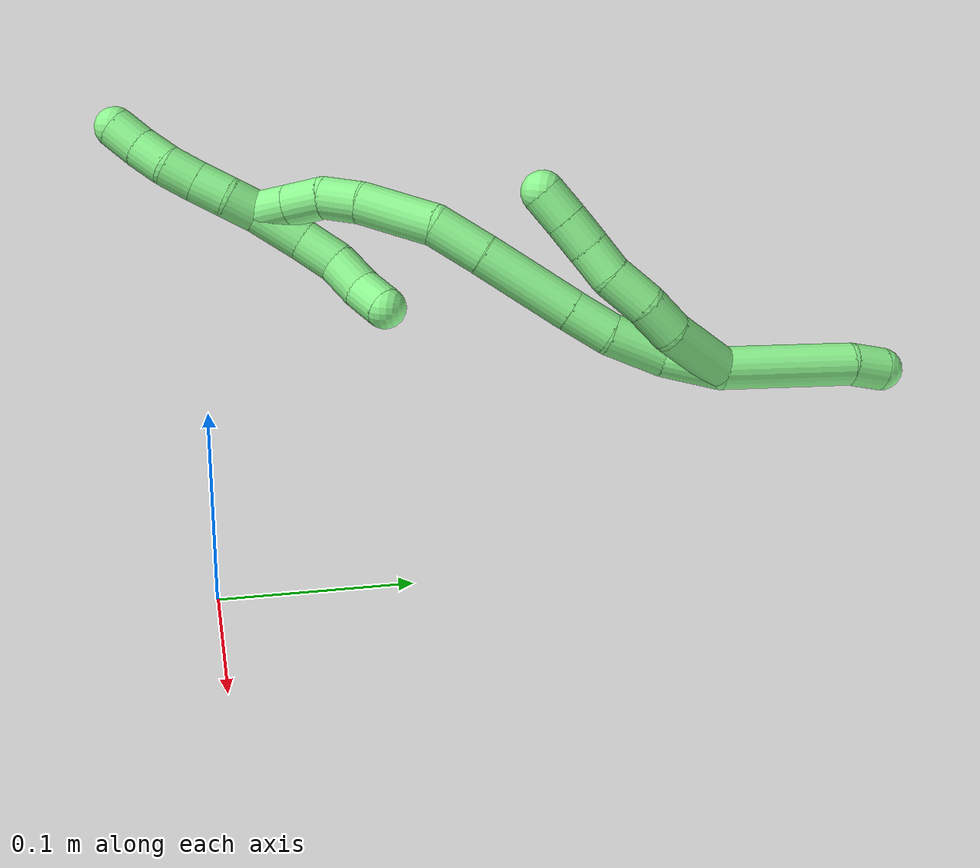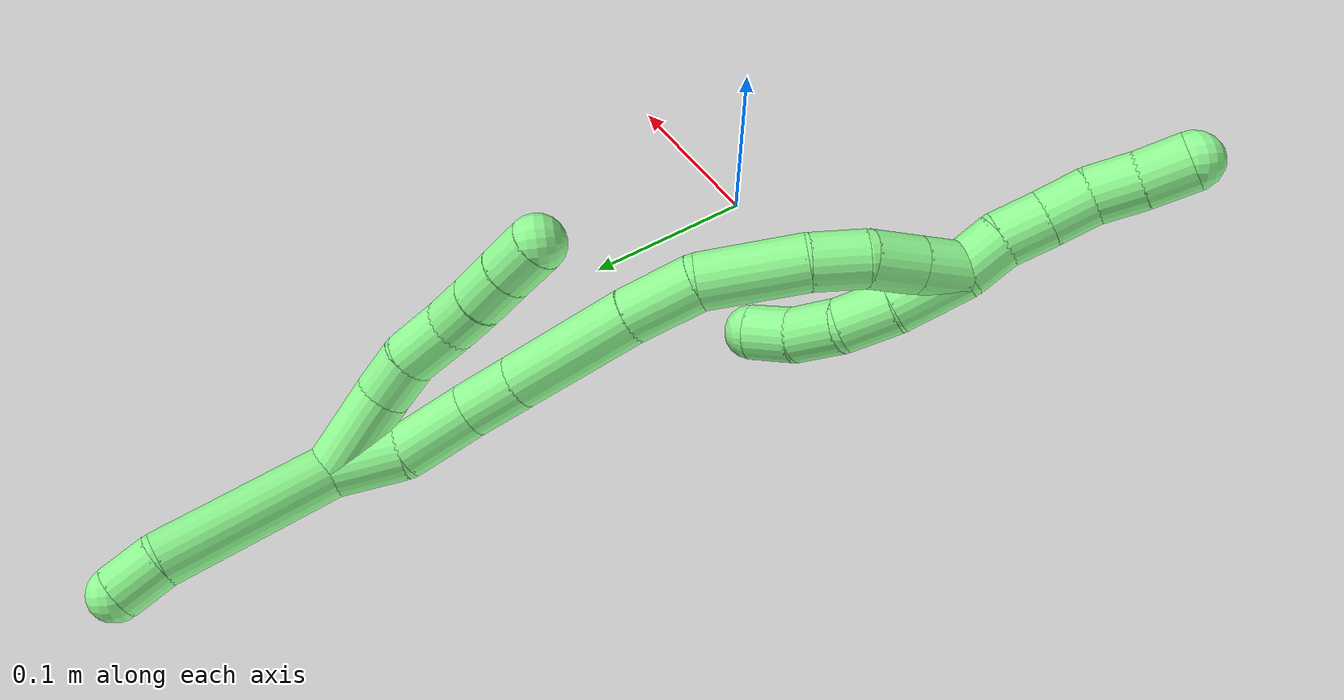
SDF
<sdf version="1.7">
 <world name="default">
  <model name="13">
   <static>0</static>
   <link name="13">
    <collision name="collision-cylinder-e_1_2_8">
     <pose>0.009177 -0.012698 -0.013753 2.39606 0.45585 1.07076</pose>
     <geometry><cylinder><radius>0.0125</radius><length>0.041694</length></cylinder></geometry>
     <surface>
      <friction><ode><mu>1.16</mu><mu2>1.16</mu2><slip1>0</slip1><slip2>0</slip2></ode></friction>
      <contact><ode><kp>1e+06</kp><kd>1</kd><max_vel>0</max_vel><min_depth>0.001</min_depth></ode></contact>
     </surface>
    </collision>
    <visual name="visual-cylinder-e_1_2_8">
     <pose>0.009177 -0.012698 -0.013753 2.39606 0.45585 1.07076</pose>
     <geometry><cylinder><radius>0.0125</radius><length>0.041694</length></cylinder></geometry>
     <material><ambient>0.564706 0.984314 0.572549 1</ambient></material>
    </visual>
    <collision name="collision-cylinder-e_2_8_9">
     <pose>0.020713 -0.03346 -0.034778 2.30452 0.213838 0.473521</pose>
     <geometry><cylinder><radius>0.0125</radius><length>0.022224</length></cylinder></geometry>
     <surface>
      <friction><ode><mu>1.16</mu><mu2>1.16</mu2><slip1>0</slip1><slip2>0</slip2></ode></friction>
      <contact><ode><kp>1e+06</kp><kd>1</kd><max_vel>0</max_vel><min_depth>0.001</min_depth></ode></contact>
     </surface>
    </collision>
    <visual name="visual-cylinder-e_2_8_9">
     <pose>0.020713 -0.03346 -0.034778 2.30452 0.213838 0.473521</pose>
     <geometry><cylinder><radius>0.0125</radius><length>0.022224</length></cylinder></geometry>
     <material><ambient>0.564706 0.984314 0.572549 1</ambient></material>
    </visual>
    <collision name="collision-cylinder-e_3_9_10">
     <pose>0.023986 -0.049506 -0.052271 2.47872 0.070443 0.204072</pose>
     <geometry><cylinder><radius>0.0125</radius><length>0.026002</length></cylinder></geometry>
     <surface>
      <friction><ode><mu>1.16</mu><mu2>1.16</mu2><slip1>0</slip1><slip2>0</slip2></ode></friction>
      <contact><ode><kp>1e+06</kp><kd>1</kd><max_vel>0</max_vel><min_depth>0.001</min_depth></ode></contact>
     </surface>
    </collision>
    <visual name="visual-cylinder-e_3_9_10">
     <pose>0.023986 -0.049506 -0.052271 2.47872 0.070443 0.204072</pose>
     <geometry><cylinder><radius>0.0125</radius><length>0.026002</length></cylinder></geometry>
     <material><ambient>0.564706 0.984314 0.572549 1</ambient></material>
    </visual>
    <collision name="collision-cylinder-e_4_10_11">
     <pose>0.024071 -0.064846 -0.069238 2.31264 -0.082948 -0.188086</pose>
     <geometry><cylinder><radius>0.0125</radius><length>0.020034</length></cylinder></geometry>
     <surface>
      <friction><ode><mu>1.16</mu><mu2>1.16</mu2><slip1>0</slip1><slip2>0</slip2></ode></friction>
      <contact><ode><kp>1e+06</kp><kd>1</kd><max_vel>0</max_vel><min_depth>0.001</min_depth></ode></contact>
     </surface>
    </collision>
    <visual name="visual-cylinder-e_4_10_11">
     <pose>0.024071 -0.064846 -0.069238 2.31264 -0.082948 -0.188086</pose>
     <geometry><cylinder><radius>0.0125</radius><length>0.020034</length></cylinder></geometry>
     <material><ambient>0.564706 0.984314 0.572549 1</ambient></material>
    </visual>
    <collision name="collision-cylinder-e_5_11_12">
     <pose>0.022951 -0.079623 -0.082711 2.30747 -0.028994 -0.065422</pose>
     <geometry><cylinder><radius>0.0125</radius><length>0.020038</length></cylinder></geometry>
     <surface>
      <friction><ode><mu>1.16</mu><mu2>1.16</mu2><slip1>0</slip1><slip2>0</slip2></ode></friction>
      <contact><ode><kp>1e+06</kp><kd>1</kd><max_vel>0</max_vel><min_depth>0.001</min_depth></ode></contact>
     </surface>
    </collision>
    <visual name="visual-cylinder-e_5_11_12">
     <pose>0.022951 -0.079623 -0.082711 2.30747 -0.028994 -0.065422</pose>
     <geometry><cylinder><radius>0.0125</radius><length>0.020038</length></cylinder></geometry>
     <material><ambient>0.564706 0.984314 0.572549 1</ambient></material>
    </visual>
    <collision name="collision-cylinder-e_6_12_6">
     <pose>0.022388 -0.094309 -0.096308 2.32794 -0.027286 -0.063311</pose>
     <geometry><cylinder><radius>0.0125</radius><length>0.020008</length></cylinder></geometry>
     <surface>
      <friction><ode><mu>1.16</mu><mu2>1.16</mu2><slip1>0</slip1><slip2>0</slip2></ode></friction>
      <contact><ode><kp>1e+06</kp><kd>1</kd><max_vel>0</max_vel><min_depth>0.001</min_depth></ode></contact>
     </surface>
    </collision>
    <visual name="visual-cylinder-e_6_12_6">
     <pose>0.022388 -0.094309 -0.096308 2.32794 -0.027286 -0.063311</pose>
     <geometry><cylinder><radius>0.0125</radius><length>0.020008</length></cylinder></geometry>
     <material><ambient>0.564706 0.984314 0.572549 1</ambient></material>
    </visual>
    <collision name="collision-cylinder-e_1_2_13">
     <pose>-0.016435 0.000772 0.035828 -0.021543 -0.429997 0.004705</pose>
     <geometry><cylinder><radius>0.0125</radius><length>0.078851</length></cylinder></geometry>
     <surface>
      <friction><ode><mu>1.16</mu><mu2>1.16</mu2><slip1>0</slip1><slip2>0</slip2></ode></friction>
      <contact><ode><kp>1e+06</kp><kd>1</kd><max_vel>0</max_vel><min_depth>0.001</min_depth></ode></contact>
     </surface>
    </collision>
    <visual name="visual-cylinder-e_1_2_13">
     <pose>-0.016435 0.000772 0.035828 -0.021543 -0.429997 0.004705</pose>
     <geometry><cylinder><radius>0.0125</radius><length>0.078851</length></cylinder></geometry>
     <material><ambient>0.564706 0.984314 0.572549 1</ambient></material>
    </visual>
    <collision name="collision-cylinder-e_2_13_5">
     <pose>-0.037837 0.003898 0.08069 -0.25488 -0.488933 0.063906</pose>
     <geometry><cylinder><radius>0.0125</radius><length>0.021149</length></cylinder></geometry>
     <surface>
      <friction><ode><mu>1.16</mu><mu2>1.16</mu2><slip1>0</slip1><slip2>0</slip2></ode></friction>
      <contact><ode><kp>1e+06</kp><kd>1</kd><max_vel>0</max_vel><min_depth>0.001</min_depth></ode></contact>
     </surface>
    </collision>
    <visual name="visual-cylinder-e_2_13_5">
     <pose>-0.037837 0.003898 0.08069 -0.25488 -0.488933 0.063906</pose>
     <geometry><cylinder><radius>0.0125</radius><length>0.021149</length></cylinder></geometry>
     <material><ambient>0.564706 0.984314 0.572549 1</ambient></material>
    </visual>
    <collision name="collision-cylinder-e_1_2_14">
     <pose>0.000502 -0.00232 -0.016458 3.00156 0.030206 0.424255</pose>
     <geometry><cylinder><radius>0.0125</radius><length>0.033257</length></cylinder></geometry>
     <surface>
      <friction><ode><mu>1.16</mu><mu2>1.16</mu2><slip1>0</slip1><slip2>0</slip2></ode></friction>
      <contact><ode><kp>1e+06</kp><kd>1</kd><max_vel>0</max_vel><min_depth>0.001</min_depth></ode></contact>
     </surface>
    </collision>
    <visual name="visual-cylinder-e_1_2_14">
     <pose>0.000502 -0.00232 -0.016458 3.00156 0.030206 0.424255</pose>
     <geometry><cylinder><radius>0.0125</radius><length>0.033257</length></cylinder></geometry>
     <material><ambient>0.564706 0.984314 0.572549 1</ambient></material>
    </visual>
    <collision name="collision-cylinder-e_2_14_15">
     <pose>0.005023 -0.011006 -0.04841 2.75174 0.23547 1.07951</pose>
     <geometry><cylinder><radius>0.0125</radius><length>0.034452</length></cylinder></geometry>
     <surface>
      <friction><ode><mu>1.16</mu><mu2>1.16</mu2><slip1>0</slip1><slip2>0</slip2></ode></friction>
      <contact><ode><kp>1e+06</kp><kd>1</kd><max_vel>0</max_vel><min_depth>0.001</min_depth></ode></contact>
     </surface>
    </collision>
    <visual name="visual-cylinder-e_2_14_15">
     <pose>0.005023 -0.011006 -0.04841 2.75174 0.23547 1.07951</pose>
     <geometry><cylinder><radius>0.0125</radius><length>0.034452</length></cylinder></geometry>
     <material><ambient>0.564706 0.984314 0.572549 1</ambient></material>
    </visual>
    <collision name="collision-cylinder-e_3_15_16">
     <pose>0.010032 -0.023777 -0.075445 2.63497 0.074879 0.287393</pose>
     <geometry><cylinder><radius>0.0125</radius><length>0.026473</length></cylinder></geometry>
     <surface>
      <friction><ode><mu>1.16</mu><mu2>1.16</mu2><slip1>0</slip1><slip2>0</slip2></ode></friction>
      <contact><ode><kp>1e+06</kp><kd>1</kd><max_vel>0</max_vel><min_depth>0.001</min_depth></ode></contact>
     </surface>
    </collision>
    <visual name="visual-cylinder-e_3_15_16">
     <pose>0.010032 -0.023777 -0.075445 2.63497 0.074879 0.287393</pose>
     <geometry><cylinder><radius>0.0125</radius><length>0.026473</length></cylinder></geometry>
     <material><ambient>0.564706 0.984314 0.572549 1</ambient></material>
    </visual>
    <collision name="collision-cylinder-e_4_16_17">
     <pose>0.012703 -0.04497 -0.112493 2.61618 0.056934 0.210983</pose>
     <geometry><cylinder><radius>0.0125</radius><length>0.059063</length></cylinder></geometry>
     <surface>
      <friction><ode><mu>1.16</mu><mu2>1.16</mu2><slip1>0</slip1><slip2>0</slip2></ode></friction>
      <contact><ode><kp>1e+06</kp><kd>1</kd><max_vel>0</max_vel><min_depth>0.001</min_depth></ode></contact>
     </surface>
    </collision>
    <visual name="visual-cylinder-e_4_16_17">
     <pose>0.012703 -0.04497 -0.112493 2.61618 0.056934 0.210983</pose>
     <geometry><cylinder><radius>0.0125</radius><length>0.059063</length></cylinder></geometry>
     <material><ambient>0.564706 0.984314 0.572549 1</ambient></material>
    </visual>
    <collision name="collision-cylinder-e_5_17_18">
     <pose>0.014437 -0.067376 -0.152516 2.65833 0.003296 0.013373</pose>
     <geometry><cylinder><radius>0.0125</radius><length>0.032789</length></cylinder></geometry>
     <surface>
      <friction><ode><mu>1.16</mu><mu2>1.16</mu2><slip1>0</slip1><slip2>0</slip2></ode></friction>
      <contact><ode><kp>1e+06</kp><kd>1</kd><max_vel>0</max_vel><min_depth>0.001</min_depth></ode></contact>
     </surface>
    </collision>
    <visual name="visual-cylinder-e_5_17_18">
     <pose>0.014437 -0.067376 -0.152516 2.65833 0.003296 0.013373</pose>
     <geometry><cylinder><radius>0.0125</radius><length>0.032789</length></cylinder></geometry>
     <material><ambient>0.564706 0.984314 0.572549 1</ambient></material>
    </visual>
    <collision name="collision-cylinder-e_6_18_19">
     <pose>0.012142 -0.079082 -0.189807 2.96396 -0.101211 -1.03429</pose>
     <geometry><cylinder><radius>0.0125</radius><length>0.046513</length></cylinder></geometry>
     <surface>
      <friction><ode><mu>1.16</mu><mu2>1.16</mu2><slip1>0</slip1><slip2>0</slip2></ode></friction>
      <contact><ode><kp>1e+06</kp><kd>1</kd><max_vel>0</max_vel><min_depth>0.001</min_depth></ode></contact>
     </surface>
    </collision>
    <visual name="visual-cylinder-e_6_18_19">
     <pose>0.012142 -0.079082 -0.189807 2.96396 -0.101211 -1.03429</pose>
     <geometry><cylinder><radius>0.0125</radius><length>0.046513</length></cylinder></geometry>
     <material><ambient>0.564706 0.984314 0.572549 1</ambient></material>
    </visual>
    <collision name="collision-cylinder-e_7_19_20">
     <pose>0.00846 -0.083432 -0.224396 3.11945 -0.112182 -2.75229</pose>
     <geometry><cylinder><radius>0.0125</radius><length>0.023786</length></cylinder></geometry>
     <surface>
      <friction><ode><mu>1.16</mu><mu2>1.16</mu2><slip1>0</slip1><slip2>0</slip2></ode></friction>
      <contact><ode><kp>1e+06</kp><kd>1</kd><max_vel>0</max_vel><min_depth>0.001</min_depth></ode></contact>
     </surface>
    </collision>
    <visual name="visual-cylinder-e_7_19_20">
     <pose>0.00846 -0.083432 -0.224396 3.11945 -0.112182 -2.75229</pose>
     <geometry><cylinder><radius>0.0125</radius><length>0.023786</length></cylinder></geometry>
     <material><ambient>0.564706 0.984314 0.572549 1</ambient></material>
    </visual>
    <collision name="collision-cylinder-e_8_20_21">
     <pose>0.006616 -0.080305 -0.247016 -2.83773 -0.045271 0.293599</pose>
     <geometry><cylinder><radius>0.0125</radius><length>0.022671</length></cylinder></geometry>
     <surface>
      <friction><ode><mu>1.16</mu><mu2>1.16</mu2><slip1>0</slip1><slip2>0</slip2></ode></friction>
      <contact><ode><kp>1e+06</kp><kd>1</kd><max_vel>0</max_vel><min_depth>0.001</min_depth></ode></contact>
     </surface>
    </collision>
    <visual name="visual-cylinder-e_8_20_21">
     <pose>0.006616 -0.080305 -0.247016 -2.83773 -0.045271 0.293599</pose>
     <geometry><cylinder><radius>0.0125</radius><length>0.022671</length></cylinder></geometry>
     <material><ambient>0.564706 0.984314 0.572549 1</ambient></material>
    </visual>
    <collision name="collision-cylinder-e_9_21_1">
     <pose>0.005632 -0.073823 -0.267842 -2.8421 -0.04492 0.295609</pose>
     <geometry><cylinder><radius>0.0125</radius><length>0.020997</length></cylinder></geometry>
     <surface>
      <friction><ode><mu>1.16</mu><mu2>1.16</mu2><slip1>0</slip1><slip2>0</slip2></ode></friction>
      <contact><ode><kp>1e+06</kp><kd>1</kd><max_vel>0</max_vel><min_depth>0.001</min_depth></ode></contact>
     </surface>
    </collision>
    <visual name="visual-cylinder-e_9_21_1">
     <pose>0.005632 -0.073823 -0.267842 -2.8421 -0.04492 0.295609</pose>
     <geometry><cylinder><radius>0.0125</radius><length>0.020997</length></cylinder></geometry>
     <material><ambient>0.564706 0.984314 0.572549 1</ambient></material>
    </visual>
    <collision name="collision-cylinder-e_1_1_22">
     <pose>0.007953 -0.075478 -0.286209 2.62422 0.283041 0.987806</pose>
     <geometry><cylinder><radius>0.0125</radius><length>0.02</length></cylinder></geometry>
     <surface>
      <friction><ode><mu>1.16</mu><mu2>1.16</mu2><slip1>0</slip1><slip2>0</slip2></ode></friction>
      <contact><ode><kp>1e+06</kp><kd>1</kd><max_vel>0</max_vel><min_depth>0.001</min_depth></ode></contact>
     </surface>
    </collision>
    <visual name="visual-cylinder-e_1_1_22">
     <pose>0.007953 -0.075478 -0.286209 2.62422 0.283041 0.987806</pose>
     <geometry><cylinder><radius>0.0125</radius><length>0.02</length></cylinder></geometry>
     <material><ambient>0.564706 0.984314 0.572549 1</ambient></material>
    </visual>
    <collision name="collision-cylinder-e_2_22_23">
     <pose>0.011356 -0.08419 -0.303715 2.73327 0.061059 0.292882</pose>
     <geometry><cylinder><radius>0.0125</radius><length>0.02</length></cylinder></geometry>
     <surface>
      <friction><ode><mu>1.16</mu><mu2>1.16</mu2><slip1>0</slip1><slip2>0</slip2></ode></friction>
      <contact><ode><kp>1e+06</kp><kd>1</kd><max_vel>0</max_vel><min_depth>0.001</min_depth></ode></contact>
     </surface>
    </collision>
    <visual name="visual-cylinder-e_2_22_23">
     <pose>0.011356 -0.08419 -0.303715 2.73327 0.061059 0.292882</pose>
     <geometry><cylinder><radius>0.0125</radius><length>0.02</length></cylinder></geometry>
     <material><ambient>0.564706 0.984314 0.572549 1</ambient></material>
    </visual>
    <collision name="collision-cylinder-e_3_23_24">
     <pose>0.01263 -0.092528 -0.321844 2.6878 0.066429 0.285874</pose>
     <geometry><cylinder><radius>0.0125</radius><length>0.02</length></cylinder></geometry>
     <surface>
      <friction><ode><mu>1.16</mu><mu2>1.16</mu2><slip1>0</slip1><slip2>0</slip2></ode></friction>
      <contact><ode><kp>1e+06</kp><kd>1</kd><max_vel>0</max_vel><min_depth>0.001</min_depth></ode></contact>
     </surface>
    </collision>
    <visual name="visual-cylinder-e_3_23_24">
     <pose>0.01263 -0.092528 -0.321844 2.6878 0.066429 0.285874</pose>
     <geometry><cylinder><radius>0.0125</radius><length>0.02</length></cylinder></geometry>
     <material><ambient>0.564706 0.984314 0.572549 1</ambient></material>
    </visual>
    <collision name="collision-cylinder-e_4_24_25">
     <pose>0.011548 -0.101274 -0.339634 2.68146 -0.175431 -0.718376</pose>
     <geometry><cylinder><radius>0.0125</radius><length>0.02</length></cylinder></geometry>
     <surface>
      <friction><ode><mu>1.16</mu><mu2>1.16</mu2><slip1>0</slip1><slip2>0</slip2></ode></friction>
      <contact><ode><kp>1e+06</kp><kd>1</kd><max_vel>0</max_vel><min_depth>0.001</min_depth></ode></contact>
     </surface>
    </collision>
    <visual name="visual-cylinder-e_4_24_25">
     <pose>0.011548 -0.101274 -0.339634 2.68146 -0.175431 -0.718376</pose>
     <geometry><cylinder><radius>0.0125</radius><length>0.02</length></cylinder></geometry>
     <material><ambient>0.564706 0.984314 0.572549 1</ambient></material>
    </visual>
    <collision name="collision-cylinder-e_5_25_4">
     <pose>0.008253 -0.110771 -0.356903 2.5963 -0.155614 -0.543857</pose>
     <geometry><cylinder><radius>0.0125</radius><length>0.02</length></cylinder></geometry>
     <surface>
      <friction><ode><mu>1.16</mu><mu2>1.16</mu2><slip1>0</slip1><slip2>0</slip2></ode></friction>
      <contact><ode><kp>1e+06</kp><kd>1</kd><max_vel>0</max_vel><min_depth>0.001</min_depth></ode></contact>
     </surface>
    </collision>
    <visual name="visual-cylinder-e_5_25_4">
     <pose>0.008253 -0.110771 -0.356903 2.5963 -0.155614 -0.543857</pose>
     <geometry><cylinder><radius>0.0125</radius><length>0.02</length></cylinder></geometry>
     <material><ambient>0.564706 0.984314 0.572549 1</ambient></material>
    </visual>
    <collision name="collision-cylinder-e_1_1_26">
     <pose>0.004515 -0.06311 -0.264033 -0.503515 -0.040848 0.010508</pose>
     <geometry><cylinder><radius>0.0125</radius><length>0.031605</length></cylinder></geometry>
     <surface>
      <friction><ode><mu>1.16</mu><mu2>1.16</mu2><slip1>0</slip1><slip2>0</slip2></ode></friction>
      <contact><ode><kp>1e+06</kp><kd>1</kd><max_vel>0</max_vel><min_depth>0.001</min_depth></ode></contact>
     </surface>
    </collision>
    <visual name="visual-cylinder-e_1_1_26">
     <pose>0.004515 -0.06311 -0.264033 -0.503515 -0.040848 0.010508</pose>
     <geometry><cylinder><radius>0.0125</radius><length>0.031605</length></cylinder></geometry>
     <material><ambient>0.564706 0.984314 0.572549 1</ambient></material>
    </visual>
    <collision name="collision-cylinder-e_2_26_27">
     <pose>0.005024 -0.049926 -0.239468 -0.478271 0.095163 -0.023217</pose>
     <geometry><cylinder><radius>0.0125</radius><length>0.024295</length></cylinder></geometry>
     <surface>
      <friction><ode><mu>1.16</mu><mu2>1.16</mu2><slip1>0</slip1><slip2>0</slip2></ode></friction>
      <contact><ode><kp>1e+06</kp><kd>1</kd><max_vel>0</max_vel><min_depth>0.001</min_depth></ode></contact>
     </surface>
    </collision>
    <visual name="visual-cylinder-e_2_26_27">
     <pose>0.005024 -0.049926 -0.239468 -0.478271 0.095163 -0.023217</pose>
     <geometry><cylinder><radius>0.0125</radius><length>0.024295</length></cylinder></geometry>
     <material><ambient>0.564706 0.984314 0.572549 1</ambient></material>
    </visual>
    <collision name="collision-cylinder-e_3_27_28">
     <pose>0.010317 -0.038226 -0.219748 -0.599099 0.363512 -0.113399</pose>
     <geometry><cylinder><radius>0.0125</radius><length>0.02328</length></cylinder></geometry>
     <surface>
      <friction><ode><mu>1.16</mu><mu2>1.16</mu2><slip1>0</slip1><slip2>0</slip2></ode></friction>
      <contact><ode><kp>1e+06</kp><kd>1</kd><max_vel>0</max_vel><min_depth>0.001</min_depth></ode></contact>
     </surface>
    </collision>
    <visual name="visual-cylinder-e_3_27_28">
     <pose>0.010317 -0.038226 -0.219748 -0.599099 0.363512 -0.113399</pose>
     <geometry><cylinder><radius>0.0125</radius><length>0.02328</length></cylinder></geometry>
     <material><ambient>0.564706 0.984314 0.572549 1</ambient></material>
    </visual>
    <collision name="collision-cylinder-e_4_28_3">
     <pose>0.019655 -0.02897 -0.202301 -0.353305 0.522935 -0.095465</pose>
     <geometry><cylinder><radius>0.0125</radius><length>0.02082</length></cylinder></geometry>
     <surface>
      <friction><ode><mu>1.16</mu><mu2>1.16</mu2><slip1>0</slip1><slip2>0</slip2></ode></friction>
      <contact><ode><kp>1e+06</kp><kd>1</kd><max_vel>0</max_vel><min_depth>0.001</min_depth></ode></contact>
     </surface>
    </collision>
    <visual name="visual-cylinder-e_4_28_3">
     <pose>0.019655 -0.02897 -0.202301 -0.353305 0.522935 -0.095465</pose>
     <geometry><cylinder><radius>0.0125</radius><length>0.02082</length></cylinder></geometry>
     <material><ambient>0.564706 0.984314 0.572549 1</ambient></material>
    </visual>
    <collision name="collision-sphere-3">
     <pose>0.024853 -0.02585 -0.19384 0 -0 0</pose>
     <geometry><sphere><radius>0.0125</radius></sphere></geometry>
     <surface>
      <friction><ode><mu>1.16</mu><mu2>1.16</mu2><slip1>0</slip1><slip2>0</slip2></ode></friction>
      <contact><ode><kp>1e+06</kp><kd>1</kd><max_vel>0</max_vel><min_depth>0.001</min_depth></ode></contact>
     </surface>
    </collision>
    <visual name="visual-sphere-3">
     <pose>0.024853 -0.02585 -0.19384 0 -0 0</pose>
     <geometry><sphere><radius>0.0125</radius></sphere></geometry>
     <material><ambient>0.564706 0.984314 0.572549 1</ambient></material>
    </visual>
    <collision name="collision-sphere-28">
     <pose>0.014456 -0.032091 -0.210763 0 -0 0</pose>
     <geometry><sphere><radius>0.0125</radius></sphere></geometry>
     <surface>
      <friction><ode><mu>1.16</mu><mu2>1.16</mu2><slip1>0</slip1><slip2>0</slip2></ode></friction>
      <contact><ode><kp>1e+06</kp><kd>1</kd><max_vel>0</max_vel><min_depth>0.001</min_depth></ode></contact>
     </surface>
    </collision>
    <visual name="visual-sphere-28">
     <pose>0.014456 -0.032091 -0.210763 0 -0 0</pose>
     <geometry><sphere><radius>0.0125</radius></sphere></geometry>
     <material><ambient>0.564706 0.984314 0.572549 1</ambient></material>
    </visual>
    <collision name="collision-sphere-27">
     <pose>0.006178 -0.044361 -0.228733 0 -0 0</pose>
     <geometry><sphere><radius>0.0125</radius></sphere></geometry>
     <surface>
      <friction><ode><mu>1.16</mu><mu2>1.16</mu2><slip1>0</slip1><slip2>0</slip2></ode></friction>
      <contact><ode><kp>1e+06</kp><kd>1</kd><max_vel>0</max_vel><min_depth>0.001</min_depth></ode></contact>
     </surface>
    </collision>
    <visual name="visual-sphere-27">
     <pose>0.006178 -0.044361 -0.228733 0 -0 0</pose>
     <geometry><sphere><radius>0.0125</radius></sphere></geometry>
     <material><ambient>0.564706 0.984314 0.572549 1</ambient></material>
    </visual>
    <collision name="collision-sphere-26">
     <pose>0.00387 -0.055492 -0.250204 0 -0 0</pose>
     <geometry><sphere><radius>0.0125</radius></sphere></geometry>
     <surface>
      <friction><ode><mu>1.16</mu><mu2>1.16</mu2><slip1>0</slip1><slip2>0</slip2></ode></friction>
      <contact><ode><kp>1e+06</kp><kd>1</kd><max_vel>0</max_vel><min_depth>0.001</min_depth></ode></contact>
     </surface>
    </collision>
    <visual name="visual-sphere-26">
     <pose>0.00387 -0.055492 -0.250204 0 -0 0</pose>
     <geometry><sphere><radius>0.0125</radius></sphere></geometry>
     <material><ambient>0.564706 0.984314 0.572549 1</ambient></material>
    </visual>
    <collision name="collision-sphere-4">
     <pose>0.006703 -0.115895 -0.365349 0 -0 0</pose>
     <geometry><sphere><radius>0.0125</radius></sphere></geometry>
     <surface>
      <friction><ode><mu>1.16</mu><mu2>1.16</mu2><slip1>0</slip1><slip2>0</slip2></ode></friction>
      <contact><ode><kp>1e+06</kp><kd>1</kd><max_vel>0</max_vel><min_depth>0.001</min_depth></ode></contact>
     </surface>
    </collision>
    <visual name="visual-sphere-4">
     <pose>0.006703 -0.115895 -0.365349 0 -0 0</pose>
     <geometry><sphere><radius>0.0125</radius></sphere></geometry>
     <material><ambient>0.564706 0.984314 0.572549 1</ambient></material>
    </visual>
    <collision name="collision-sphere-25">
     <pose>0.009803 -0.105647 -0.348457 0 -0 0</pose>
     <geometry><sphere><radius>0.0125</radius></sphere></geometry>
     <surface>
      <friction><ode><mu>1.16</mu><mu2>1.16</mu2><slip1>0</slip1><slip2>0</slip2></ode></friction>
      <contact><ode><kp>1e+06</kp><kd>1</kd><max_vel>0</max_vel><min_depth>0.001</min_depth></ode></contact>
     </surface>
    </collision>
    <visual name="visual-sphere-25">
     <pose>0.009803 -0.105647 -0.348457 0 -0 0</pose>
     <geometry><sphere><radius>0.0125</radius></sphere></geometry>
     <material><ambient>0.564706 0.984314 0.572549 1</ambient></material>
    </visual>
    <collision name="collision-sphere-24">
     <pose>0.013294 -0.096902 -0.330812 0 -0 0</pose>
     <geometry><sphere><radius>0.0125</radius></sphere></geometry>
     <surface>
      <friction><ode><mu>1.16</mu><mu2>1.16</mu2><slip1>0</slip1><slip2>0</slip2></ode></friction>
      <contact><ode><kp>1e+06</kp><kd>1</kd><max_vel>0</max_vel><min_depth>0.001</min_depth></ode></contact>
     </surface>
    </collision>
    <visual name="visual-sphere-24">
     <pose>0.013294 -0.096902 -0.330812 0 -0 0</pose>
     <geometry><sphere><radius>0.0125</radius></sphere></geometry>
     <material><ambient>0.564706 0.984314 0.572549 1</ambient></material>
    </visual>
    <collision name="collision-sphere-23">
     <pose>0.011966 -0.088154 -0.312876 0 -0 0</pose>
     <geometry><sphere><radius>0.0125</radius></sphere></geometry>
     <surface>
      <friction><ode><mu>1.16</mu><mu2>1.16</mu2><slip1>0</slip1><slip2>0</slip2></ode></friction>
      <contact><ode><kp>1e+06</kp><kd>1</kd><max_vel>0</max_vel><min_depth>0.001</min_depth></ode></contact>
     </surface>
    </collision>
    <visual name="visual-sphere-23">
     <pose>0.011966 -0.088154 -0.312876 0 -0 0</pose>
     <geometry><sphere><radius>0.0125</radius></sphere></geometry>
     <material><ambient>0.564706 0.984314 0.572549 1</ambient></material>
    </visual>
    <collision name="collision-sphere-22">
     <pose>0.010746 -0.080227 -0.294554 0 -0 0</pose>
     <geometry><sphere><radius>0.0125</radius></sphere></geometry>
     <surface>
      <friction><ode><mu>1.16</mu><mu2>1.16</mu2><slip1>0</slip1><slip2>0</slip2></ode></friction>
      <contact><ode><kp>1e+06</kp><kd>1</kd><max_vel>0</max_vel><min_depth>0.001</min_depth></ode></contact>
     </surface>
    </collision>
    <visual name="visual-sphere-22">
     <pose>0.010746 -0.080227 -0.294554 0 -0 0</pose>
     <geometry><sphere><radius>0.0125</radius></sphere></geometry>
     <material><ambient>0.564706 0.984314 0.572549 1</ambient></material>
    </visual>
    <collision name="collision-sphere-1">
     <pose>0.00516 -0.070729 -0.277863 0 -0 0</pose>
     <geometry><sphere><radius>0.0125</radius></sphere></geometry>
     <surface>
      <friction><ode><mu>1.16</mu><mu2>1.16</mu2><slip1>0</slip1><slip2>0</slip2></ode></friction>
      <contact><ode><kp>1e+06</kp><kd>1</kd><max_vel>0</max_vel><min_depth>0.001</min_depth></ode></contact>
     </surface>
    </collision>
    <visual name="visual-sphere-1">
     <pose>0.00516 -0.070729 -0.277863 0 -0 0</pose>
     <geometry><sphere><radius>0.0125</radius></sphere></geometry>
     <material><ambient>0.564706 0.984314 0.572549 1</ambient></material>
    </visual>
    <collision name="collision-sphere-21">
     <pose>0.006103 -0.076917 -0.257821 0 -0 0</pose>
     <geometry><sphere><radius>0.0125</radius></sphere></geometry>
     <surface>
      <friction><ode><mu>1.16</mu><mu2>1.16</mu2><slip1>0</slip1><slip2>0</slip2></ode></friction>
      <contact><ode><kp>1e+06</kp><kd>1</kd><max_vel>0</max_vel><min_depth>0.001</min_depth></ode></contact>
     </surface>
    </collision>
    <visual name="visual-sphere-21">
     <pose>0.006103 -0.076917 -0.257821 0 -0 0</pose>
     <geometry><sphere><radius>0.0125</radius></sphere></geometry>
     <material><ambient>0.564706 0.984314 0.572549 1</ambient></material>
    </visual>
    <collision name="collision-sphere-12">
     <pose>0.022661 -0.087041 -0.08944 0 -0 0</pose>
     <geometry><sphere><radius>0.0125</radius></sphere></geometry>
     <surface>
      <friction><ode><mu>1.16</mu><mu2>1.16</mu2><slip1>0</slip1><slip2>0</slip2></ode></friction>
      <contact><ode><kp>1e+06</kp><kd>1</kd><max_vel>0</max_vel><min_depth>0.001</min_depth></ode></contact>
     </surface>
    </collision>
    <visual name="visual-sphere-12">
     <pose>0.022661 -0.087041 -0.08944 0 -0 0</pose>
     <geometry><sphere><radius>0.0125</radius></sphere></geometry>
     <material><ambient>0.564706 0.984314 0.572549 1</ambient></material>
    </visual>
    <collision name="collision-sphere-11">
     <pose>0.023241 -0.072205 -0.075983 0 -0 0</pose>
     <geometry><sphere><radius>0.0125</radius></sphere></geometry>
     <surface>
      <friction><ode><mu>1.16</mu><mu2>1.16</mu2><slip1>0</slip1><slip2>0</slip2></ode></friction>
      <contact><ode><kp>1e+06</kp><kd>1</kd><max_vel>0</max_vel><min_depth>0.001</min_depth></ode></contact>
     </surface>
    </collision>
    <visual name="visual-sphere-11">
     <pose>0.023241 -0.072205 -0.075983 0 -0 0</pose>
     <geometry><sphere><radius>0.0125</radius></sphere></geometry>
     <material><ambient>0.564706 0.984314 0.572549 1</ambient></material>
    </visual>
    <collision name="collision-sphere-10">
     <pose>0.024901 -0.057487 -0.062494 0 -0 0</pose>
     <geometry><sphere><radius>0.0125</radius></sphere></geometry>
     <surface>
      <friction><ode><mu>1.16</mu><mu2>1.16</mu2><slip1>0</slip1><slip2>0</slip2></ode></friction>
      <contact><ode><kp>1e+06</kp><kd>1</kd><max_vel>0</max_vel><min_depth>0.001</min_depth></ode></contact>
     </surface>
    </collision>
    <visual name="visual-sphere-10">
     <pose>0.024901 -0.057487 -0.062494 0 -0 0</pose>
     <geometry><sphere><radius>0.0125</radius></sphere></geometry>
     <material><ambient>0.564706 0.984314 0.572549 1</ambient></material>
    </visual>
    <collision name="collision-sphere-9">
     <pose>0.023071 -0.041525 -0.042049 0 -0 0</pose>
     <geometry><sphere><radius>0.0125</radius></sphere></geometry>
     <surface>
      <friction><ode><mu>1.16</mu><mu2>1.16</mu2><slip1>0</slip1><slip2>0</slip2></ode></friction>
      <contact><ode><kp>1e+06</kp><kd>1</kd><max_vel>0</max_vel><min_depth>0.001</min_depth></ode></contact>
     </surface>
    </collision>
    <visual name="visual-sphere-9">
     <pose>0.023071 -0.041525 -0.042049 0 -0 0</pose>
     <geometry><sphere><radius>0.0125</radius></sphere></geometry>
     <material><ambient>0.564706 0.984314 0.572549 1</ambient></material>
    </visual>
    <collision name="collision-sphere-2">
     <geometry><sphere><radius>0.0125</radius></sphere></geometry>
     <surface>
      <friction><ode><mu>1.16</mu><mu2>1.16</mu2><slip1>0</slip1><slip2>0</slip2></ode></friction>
      <contact><ode><kp>1e+06</kp><kd>1</kd><max_vel>0</max_vel><min_depth>0.001</min_depth></ode></contact>
     </surface>
    </collision>
    <visual name="visual-sphere-2">
     <geometry><sphere><radius>0.0125</radius></sphere></geometry>
     <material><ambient>0.564706 0.984314 0.572549 1</ambient></material>
    </visual>
    <collision name="collision-sphere-19">
     <pose>0.009792 -0.08317 -0.212581 0 -0 0</pose>
     <geometry><sphere><radius>0.0125</radius></sphere></geometry>
     <surface>
      <friction><ode><mu>1.16</mu><mu2>1.16</mu2><slip1>0</slip1><slip2>0</slip2></ode></friction>
      <contact><ode><kp>1e+06</kp><kd>1</kd><max_vel>0</max_vel><min_depth>0.001</min_depth></ode></contact>
     </surface>
    </collision>
    <visual name="visual-sphere-19">
     <pose>0.009792 -0.08317 -0.212581 0 -0 0</pose>
     <geometry><sphere><radius>0.0125</radius></sphere></geometry>
     <material><ambient>0.564706 0.984314 0.572549 1</ambient></material>
    </visual>
    <collision name="collision-sphere-8">
     <pose>0.018355 -0.025396 -0.027506 0 -0 0</pose>
     <geometry><sphere><radius>0.0125</radius></sphere></geometry>
     <surface>
      <friction><ode><mu>1.16</mu><mu2>1.16</mu2><slip1>0</slip1><slip2>0</slip2></ode></friction>
      <contact><ode><kp>1e+06</kp><kd>1</kd><max_vel>0</max_vel><min_depth>0.001</min_depth></ode></contact>
     </surface>
    </collision>
    <visual name="visual-sphere-8">
     <pose>0.018355 -0.025396 -0.027506 0 -0 0</pose>
     <geometry><sphere><radius>0.0125</radius></sphere></geometry>
     <material><ambient>0.564706 0.984314 0.572549 1</ambient></material>
    </visual>
    <collision name="collision-sphere-6">
     <pose>0.022115 -0.101578 -0.103177 0 -0 0</pose>
     <geometry><sphere><radius>0.0125</radius></sphere></geometry>
     <surface>
      <friction><ode><mu>1.16</mu><mu2>1.16</mu2><slip1>0</slip1><slip2>0</slip2></ode></friction>
      <contact><ode><kp>1e+06</kp><kd>1</kd><max_vel>0</max_vel><min_depth>0.001</min_depth></ode></contact>
     </surface>
    </collision>
    <visual name="visual-sphere-6">
     <pose>0.022115 -0.101578 -0.103177 0 -0 0</pose>
     <geometry><sphere><radius>0.0125</radius></sphere></geometry>
     <material><ambient>0.564706 0.984314 0.572549 1</ambient></material>
    </visual>
    <collision name="collision-sphere-13">
     <pose>-0.03287 0.001544 0.071656 0 -0 0</pose>
     <geometry><sphere><radius>0.0125</radius></sphere></geometry>
     <surface>
      <friction><ode><mu>1.16</mu><mu2>1.16</mu2><slip1>0</slip1><slip2>0</slip2></ode></friction>
      <contact><ode><kp>1e+06</kp><kd>1</kd><max_vel>0</max_vel><min_depth>0.001</min_depth></ode></contact>
     </surface>
    </collision>
    <visual name="visual-sphere-13">
     <pose>-0.03287 0.001544 0.071656 0 -0 0</pose>
     <geometry><sphere><radius>0.0125</radius></sphere></geometry>
     <material><ambient>0.564706 0.984314 0.572549 1</ambient></material>
    </visual>
    <collision name="collision-sphere-5">
     <pose>-0.042804 0.006252 0.089724 0 -0 0</pose>
     <geometry><sphere><radius>0.0125</radius></sphere></geometry>
     <surface>
      <friction><ode><mu>1.16</mu><mu2>1.16</mu2><slip1>0</slip1><slip2>0</slip2></ode></friction>
      <contact><ode><kp>1e+06</kp><kd>1</kd><max_vel>0</max_vel><min_depth>0.001</min_depth></ode></contact>
     </surface>
    </collision>
    <visual name="visual-sphere-5">
     <pose>-0.042804 0.006252 0.089724 0 -0 0</pose>
     <geometry><sphere><radius>0.0125</radius></sphere></geometry>
     <material><ambient>0.564706 0.984314 0.572549 1</ambient></material>
    </visual>
    <collision name="collision-sphere-14">
     <pose>0.001004 -0.00464 -0.032916 0 -0 0</pose>
     <geometry><sphere><radius>0.0125</radius></sphere></geometry>
     <surface>
      <friction><ode><mu>1.16</mu><mu2>1.16</mu2><slip1>0</slip1><slip2>0</slip2></ode></friction>
      <contact><ode><kp>1e+06</kp><kd>1</kd><max_vel>0</max_vel><min_depth>0.001</min_depth></ode></contact>
     </surface>
    </collision>
    <visual name="visual-sphere-14">
     <pose>0.001004 -0.00464 -0.032916 0 -0 0</pose>
     <geometry><sphere><radius>0.0125</radius></sphere></geometry>
     <material><ambient>0.564706 0.984314 0.572549 1</ambient></material>
    </visual>
    <collision name="collision-sphere-15">
     <pose>0.009042 -0.017372 -0.063904 0 -0 0</pose>
     <geometry><sphere><radius>0.0125</radius></sphere></geometry>
     <surface>
      <friction><ode><mu>1.16</mu><mu2>1.16</mu2><slip1>0</slip1><slip2>0</slip2></ode></friction>
      <contact><ode><kp>1e+06</kp><kd>1</kd><max_vel>0</max_vel><min_depth>0.001</min_depth></ode></contact>
     </surface>
    </collision>
    <visual name="visual-sphere-15">
     <pose>0.009042 -0.017372 -0.063904 0 -0 0</pose>
     <geometry><sphere><radius>0.0125</radius></sphere></geometry>
     <material><ambient>0.564706 0.984314 0.572549 1</ambient></material>
    </visual>
    <collision name="collision-sphere-16">
     <pose>0.011022 -0.030181 -0.086986 0 -0 0</pose>
     <geometry><sphere><radius>0.0125</radius></sphere></geometry>
     <surface>
      <friction><ode><mu>1.16</mu><mu2>1.16</mu2><slip1>0</slip1><slip2>0</slip2></ode></friction>
      <contact><ode><kp>1e+06</kp><kd>1</kd><max_vel>0</max_vel><min_depth>0.001</min_depth></ode></contact>
     </surface>
    </collision>
    <visual name="visual-sphere-16">
     <pose>0.011022 -0.030181 -0.086986 0 -0 0</pose>
     <geometry><sphere><radius>0.0125</radius></sphere></geometry>
     <material><ambient>0.564706 0.984314 0.572549 1</ambient></material>
    </visual>
    <collision name="collision-sphere-17">
     <pose>0.014383 -0.059758 -0.138 0 -0 0</pose>
     <geometry><sphere><radius>0.0125</radius></sphere></geometry>
     <surface>
      <friction><ode><mu>1.16</mu><mu2>1.16</mu2><slip1>0</slip1><slip2>0</slip2></ode></friction>
      <contact><ode><kp>1e+06</kp><kd>1</kd><max_vel>0</max_vel><min_depth>0.001</min_depth></ode></contact>
     </surface>
    </collision>
    <visual name="visual-sphere-17">
     <pose>0.014383 -0.059758 -0.138 0 -0 0</pose>
     <geometry><sphere><radius>0.0125</radius></sphere></geometry>
     <material><ambient>0.564706 0.984314 0.572549 1</ambient></material>
    </visual>
    <collision name="collision-sphere-18">
     <pose>0.014491 -0.074994 -0.167033 0 -0 0</pose>
     <geometry><sphere><radius>0.0125</radius></sphere></geometry>
     <surface>
      <friction><ode><mu>1.16</mu><mu2>1.16</mu2><slip1>0</slip1><slip2>0</slip2></ode></friction>
      <contact><ode><kp>1e+06</kp><kd>1</kd><max_vel>0</max_vel><min_depth>0.001</min_depth></ode></contact>
     </surface>
    </collision>
    <visual name="visual-sphere-18">
     <pose>0.014491 -0.074994 -0.167033 0 -0 0</pose>
     <geometry><sphere><radius>0.0125</radius></sphere></geometry>
     <material><ambient>0.564706 0.984314 0.572549 1</ambient></material>
    </visual>
    <collision name="collision-sphere-20">
     <pose>0.007129 -0.083694 -0.236211 0 -0 0</pose>
     <geometry><sphere><radius>0.0125</radius></sphere></geometry>
     <surface>
      <friction><ode><mu>1.16</mu><mu2>1.16</mu2><slip1>0</slip1><slip2>0</slip2></ode></friction>
      <contact><ode><kp>1e+06</kp><kd>1</kd><max_vel>0</max_vel><min_depth>0.001</min_depth></ode></contact>
     </surface>
    </collision>
    <visual name="visual-sphere-20">
     <pose>0.007129 -0.083694 -0.236211 0 -0 0</pose>
     <geometry><sphere><radius>0.0125</radius></sphere></geometry>
     <material><ambient>0.564706 0.984314 0.572549 1</ambient></material>
    </visual>
    <inertial>
     <pose>0.00723 -0.048225 -0.133399 0 -0 0</pose>
     <mass>0.75</mass>
     <inertia><ixx>0.000116</ixx><ixy>0</ixy><ixz>0</ixz><iyy>5e-06</iyy><iyz>0</iyz><izz>1.4e-05</izz></inertia>
    </inertial>
   </link>
   <pose>-0.096657 0.294419 0.073891 -1.60029 0.031203 -0.421479</pose>
  </model>
 </world>
</sdf>
